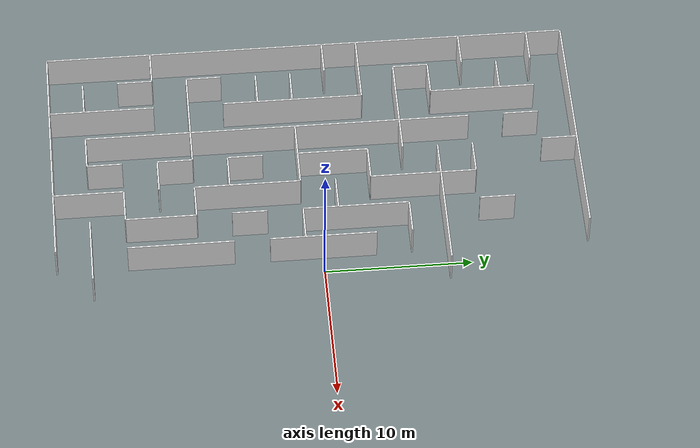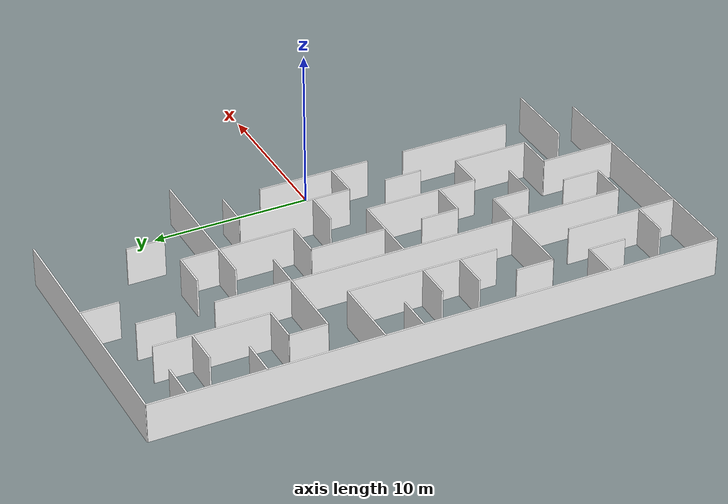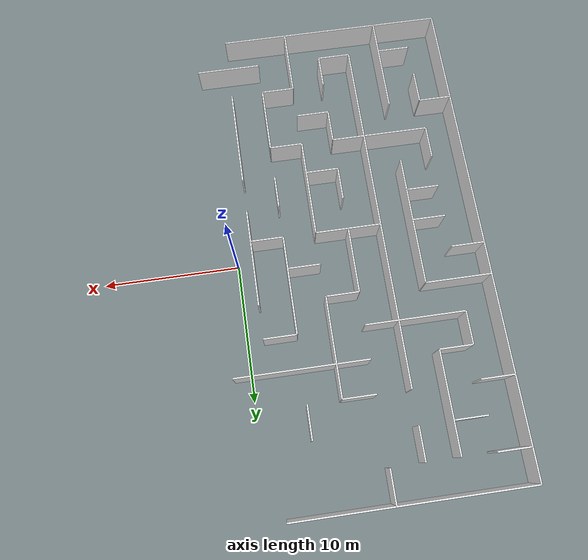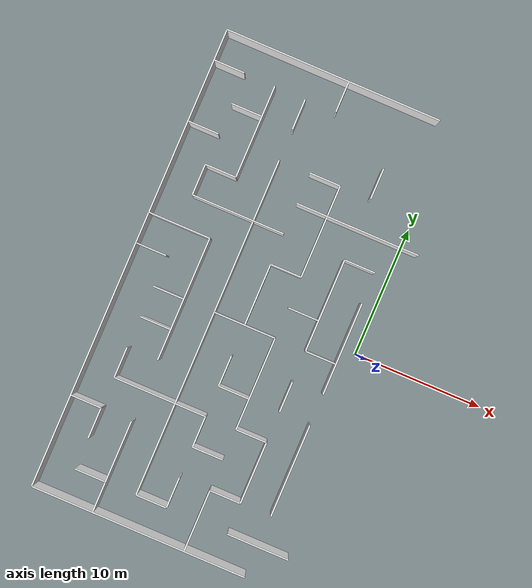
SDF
<sdf version="1.7">
 <model name="maze_3">
  <static>1</static>
  <link name="Wall_0">
   <collision name="Wall_0_Collision">
    <geometry><box><size>16.8000 0.1000 2.5000</size></box></geometry>
    <pose>0 0 1.2500 0 -0 0</pose>
   </collision>
   <visual name="Wall_0_Visual">
    <pose>0 0 1.2500 0 -0 0</pose>
    <geometry><box><size>16.8000 0.1000 2.5000</size></box></geometry>
    <material>
     <script><uri>file://media/materials/scripts/gazebo.material</uri><n>Gazebo/Grey</n></script>
     <ambient>1 1 1 1</ambient>
    </material>
    <meta><layer>0</layer></meta>
   </visual>
   <pose>-9.600000 18.000000 0 0 -0 -0.00000</pose>
  </link>
  <link name="Wall_2">
   <collision name="Wall_2_Collision">
    <geometry><box><size>2.4000 0.1000 2.5000</size></box></geometry>
    <pose>0 0 1.2500 0 -0 0</pose>
   </collision>
   <visual name="Wall_2_Visual">
    <pose>0 0 1.2500 0 -0 0</pose>
    <geometry><box><size>2.4000 0.1000 2.5000</size></box></geometry>
    <material>
     <script><uri>file://media/materials/scripts/gazebo.material</uri><n>Gazebo/Grey</n></script>
     <ambient>1 1 1 1</ambient>
    </material>
    <meta><layer>0</layer></meta>
   </visual>
   <pose>-16.800000 15.600000 0 0 -0 -0.00000</pose>
  </link>
  <link name="Wall_4">
   <collision name="Wall_4_Collision">
    <geometry><box><size>2.4000 0.1000 2.5000</size></box></geometry>
    <pose>0 0 1.2500 0 -0 0</pose>
   </collision>
   <visual name="Wall_4_Visual">
    <pose>0 0 1.2500 0 -0 0</pose>
    <geometry><box><size>2.4000 0.1000 2.5000</size></box></geometry>
    <material>
     <script><uri>file://media/materials/scripts/gazebo.material</uri><n>Gazebo/Grey</n></script>
     <ambient>1 1 1 1</ambient>
    </material>
    <meta><layer>0</layer></meta>
   </visual>
   <pose>-14.400000 13.200000 0 0 -0 -0.00000</pose>
  </link>
  <link name="Wall_6">
   <collision name="Wall_6_Collision">
    <geometry><box><size>2.4000 0.1000 2.5000</size></box></geometry>
    <pose>0 0 1.2500 0 -0 0</pose>
   </collision>
   <visual name="Wall_6_Visual">
    <pose>0 0 1.2500 0 -0 0</pose>
    <geometry><box><size>2.4000 0.1000 2.5000</size></box></geometry>
    <material>
     <script><uri>file://media/materials/scripts/gazebo.material</uri><n>Gazebo/Grey</n></script>
     <ambient>1 1 1 1</ambient>
    </material>
    <meta><layer>0</layer></meta>
   </visual>
   <pose>-16.800000 10.800000 0 0 -0 -0.00000</pose>
  </link>
  <link name="Wall_7">
   <collision name="Wall_7_Collision">
    <geometry><box><size>2.4000 0.1000 2.5000</size></box></geometry>
    <pose>0 0 1.2500 0 -0 0</pose>
   </collision>
   <visual name="Wall_7_Visual">
    <pose>0 0 1.2500 0 -0 0</pose>
    <geometry><box><size>2.4000 0.1000 2.5000</size></box></geometry>
    <material>
     <script><uri>file://media/materials/scripts/gazebo.material</uri><n>Gazebo/Grey</n></script>
     <ambient>1 1 1 1</ambient>
    </material>
    <meta><layer>0</layer></meta>
   </visual>
   <pose>-7.200000 10.800000 0 0 -0 -0.00000</pose>
  </link>
  <link name="Wall_9">
   <collision name="Wall_9_Collision">
    <geometry><box><size>2.4000 0.1000 2.5000</size></box></geometry>
    <pose>0 0 1.2500 0 -0 0</pose>
   </collision>
   <visual name="Wall_9_Visual">
    <pose>0 0 1.2500 0 -0 0</pose>
    <geometry><box><size>2.4000 0.1000 2.5000</size></box></geometry>
    <material>
     <script><uri>file://media/materials/scripts/gazebo.material</uri><n>Gazebo/Grey</n></script>
     <ambient>1 1 1 1</ambient>
    </material>
    <meta><layer>0</layer></meta>
   </visual>
   <pose>-14.400000 8.400000 0 0 -0 -0.00000</pose>
  </link>
  <link name="Wall_10">
   <collision name="Wall_10_Collision">
    <geometry><box><size>9.6000 0.1000 2.5000</size></box></geometry>
    <pose>0 0 1.2500 0 -0 0</pose>
   </collision>
   <visual name="Wall_10_Visual">
    <pose>0 0 1.2500 0 -0 0</pose>
    <geometry><box><size>9.6000 0.1000 2.5000</size></box></geometry>
    <material>
     <script><uri>file://media/materials/scripts/gazebo.material</uri><n>Gazebo/Grey</n></script>
     <ambient>1 1 1 1</ambient>
    </material>
    <meta><layer>0</layer></meta>
   </visual>
   <pose>-3.600000 8.400000 0 0 -0 -0.00000</pose>
  </link>
  <link name="Wall_12">
   <collision name="Wall_12_Collision">
    <geometry><box><size>7.2000 0.1000 2.5000</size></box></geometry>
    <pose>0 0 1.2500 0 -0 0</pose>
   </collision>
   <visual name="Wall_12_Visual">
    <pose>0 0 1.2500 0 -0 0</pose>
    <geometry><box><size>7.2000 0.1000 2.5000</size></box></geometry>
    <material>
     <script><uri>file://media/materials/scripts/gazebo.material</uri><n>Gazebo/Grey</n></script>
     <ambient>1 1 1 1</ambient>
    </material>
    <meta><layer>0</layer></meta>
   </visual>
   <pose>-12.000000 6.000000 0 0 -0 -0.00000</pose>
  </link>
  <link name="Wall_13">
   <collision name="Wall_13_Collision">
    <geometry><box><size>2.4000 0.1000 2.5000</size></box></geometry>
    <pose>0 0 1.2500 0 -0 0</pose>
   </collision>
   <visual name="Wall_13_Visual">
    <pose>0 0 1.2500 0 -0 0</pose>
    <geometry><box><size>2.4000 0.1000 2.5000</size></box></geometry>
    <material>
     <script><uri>file://media/materials/scripts/gazebo.material</uri><n>Gazebo/Grey</n></script>
     <ambient>1 1 1 1</ambient>
    </material>
    <meta><layer>0</layer></meta>
   </visual>
   <pose>-2.400000 6.000000 0 0 -0 -0.00000</pose>
  </link>
  <link name="Wall_16">
   <collision name="Wall_16_Collision">
    <geometry><box><size>4.8000 0.1000 2.5000</size></box></geometry>
    <pose>0 0 1.2500 0 -0 0</pose>
   </collision>
   <visual name="Wall_16_Visual">
    <pose>0 0 1.2500 0 -0 0</pose>
    <geometry><box><size>4.8000 0.1000 2.5000</size></box></geometry>
    <material>
     <script><uri>file://media/materials/scripts/gazebo.material</uri><n>Gazebo/Grey</n></script>
     <ambient>1 1 1 1</ambient>
    </material>
    <meta><layer>0</layer></meta>
   </visual>
   <pose>-15.600000 3.600000 0 0 -0 -0.00000</pose>
  </link>
  <link name="Wall_17">
   <collision name="Wall_17_Collision">
    <geometry><box><size>2.4000 0.1000 2.5000</size></box></geometry>
    <pose>0 0 1.2500 0 -0 0</pose>
   </collision>
   <visual name="Wall_17_Visual">
    <pose>0 0 1.2500 0 -0 0</pose>
    <geometry><box><size>2.4000 0.1000 2.5000</size></box></geometry>
    <material>
     <script><uri>file://media/materials/scripts/gazebo.material</uri><n>Gazebo/Grey</n></script>
     <ambient>1 1 1 1</ambient>
    </material>
    <meta><layer>0</layer></meta>
   </visual>
   <pose>-7.200000 3.600000 0 0 -0 -0.00000</pose>
  </link>
  <link name="Wall_19">
   <collision name="Wall_19_Collision">
    <geometry><box><size>2.4000 0.1000 2.5000</size></box></geometry>
    <pose>0 0 1.2500 0 -0 0</pose>
   </collision>
   <visual name="Wall_19_Visual">
    <pose>0 0 1.2500 0 -0 0</pose>
    <geometry><box><size>2.4000 0.1000 2.5000</size></box></geometry>
    <material>
     <script><uri>file://media/materials/scripts/gazebo.material</uri><n>Gazebo/Grey</n></script>
     <ambient>1 1 1 1</ambient>
    </material>
    <meta><layer>0</layer></meta>
   </visual>
   <pose>-16.800000 1.200000 0 0 -0 -0.00000</pose>
  </link>
  <link name="Wall_20">
   <collision name="Wall_20_Collision">
    <geometry><box><size>2.4000 0.1000 2.5000</size></box></geometry>
    <pose>0 0 1.2500 0 -0 0</pose>
   </collision>
   <visual name="Wall_20_Visual">
    <pose>0 0 1.2500 0 -0 0</pose>
    <geometry><box><size>2.4000 0.1000 2.5000</size></box></geometry>
    <material>
     <script><uri>file://media/materials/scripts/gazebo.material</uri><n>Gazebo/Grey</n></script>
     <ambient>1 1 1 1</ambient>
    </material>
    <meta><layer>0</layer></meta>
   </visual>
   <pose>-4.800000 1.200000 0 0 -0 -0.00000</pose>
  </link>
  <link name="Wall_22">
   <collision name="Wall_22_Collision">
    <geometry><box><size>2.4000 0.1000 2.5000</size></box></geometry>
    <pose>0 0 1.2500 0 -0 0</pose>
   </collision>
   <visual name="Wall_22_Visual">
    <pose>0 0 1.2500 0 -0 0</pose>
    <geometry><box><size>2.4000 0.1000 2.5000</size></box></geometry>
    <material>
     <script><uri>file://media/materials/scripts/gazebo.material</uri><n>Gazebo/Grey</n></script>
     <ambient>1 1 1 1</ambient>
    </material>
    <meta><layer>0</layer></meta>
   </visual>
   <pose>-14.400000 -1.200000 0 0 -0 -0.00000</pose>
  </link>
  <link name="Wall_23">
   <collision name="Wall_23_Collision">
    <geometry><box><size>4.8000 0.1000 2.5000</size></box></geometry>
    <pose>0 0 1.2500 0 -0 0</pose>
   </collision>
   <visual name="Wall_23_Visual">
    <pose>0 0 1.2500 0 -0 0</pose>
    <geometry><box><size>4.8000 0.1000 2.5000</size></box></geometry>
    <material>
     <script><uri>file://media/materials/scripts/gazebo.material</uri><n>Gazebo/Grey</n></script>
     <ambient>1 1 1 1</ambient>
    </material>
    <meta><layer>0</layer></meta>
   </visual>
   <pose>-8.400000 -1.200000 0 0 -0 -0.00000</pose>
  </link>
  <link name="Wall_24">
   <collision name="Wall_24_Collision">
    <geometry><box><size>2.4000 0.1000 2.5000</size></box></geometry>
    <pose>0 0 1.2500 0 -0 0</pose>
   </collision>
   <visual name="Wall_24_Visual">
    <pose>0 0 1.2500 0 -0 0</pose>
    <geometry><box><size>2.4000 0.1000 2.5000</size></box></geometry>
    <material>
     <script><uri>file://media/materials/scripts/gazebo.material</uri><n>Gazebo/Grey</n></script>
     <ambient>1 1 1 1</ambient>
    </material>
    <meta><layer>0</layer></meta>
   </visual>
   <pose>-2.400000 -1.200000 0 0 -0 -0.00000</pose>
  </link>
  <link name="Wall_26">
   <collision name="Wall_26_Collision">
    <geometry><box><size>2.4000 0.1000 2.5000</size></box></geometry>
    <pose>0 0 1.2500 0 -0 0</pose>
   </collision>
   <visual name="Wall_26_Visual">
    <pose>0 0 1.2500 0 -0 0</pose>
    <geometry><box><size>2.4000 0.1000 2.5000</size></box></geometry>
    <material>
     <script><uri>file://media/materials/scripts/gazebo.material</uri><n>Gazebo/Grey</n></script>
     <ambient>1 1 1 1</ambient>
    </material>
    <meta><layer>0</layer></meta>
   </visual>
   <pose>-14.400000 -3.600000 0 0 -0 -0.00000</pose>
  </link>
  <link name="Wall_29">
   <collision name="Wall_29_Collision">
    <geometry><box><size>2.4000 0.1000 2.5000</size></box></geometry>
    <pose>0 0 1.2500 0 -0 0</pose>
   </collision>
   <visual name="Wall_29_Visual">
    <pose>0 0 1.2500 0 -0 0</pose>
    <geometry><box><size>2.4000 0.1000 2.5000</size></box></geometry>
    <material>
     <script><uri>file://media/materials/scripts/gazebo.material</uri><n>Gazebo/Grey</n></script>
     <ambient>1 1 1 1</ambient>
    </material>
    <meta><layer>0</layer></meta>
   </visual>
   <pose>-7.200000 -6.000000 0 0 -0 -0.00000</pose>
  </link>
  <link name="Wall_32">
   <collision name="Wall_32_Collision">
    <geometry><box><size>7.2000 0.1000 2.5000</size></box></geometry>
    <pose>0 0 1.2500 0 -0 0</pose>
   </collision>
   <visual name="Wall_32_Visual">
    <pose>0 0 1.2500 0 -0 0</pose>
    <geometry><box><size>7.2000 0.1000 2.5000</size></box></geometry>
    <material>
     <script><uri>file://media/materials/scripts/gazebo.material</uri><n>Gazebo/Grey</n></script>
     <ambient>1 1 1 1</ambient>
    </material>
    <meta><layer>0</layer></meta>
   </visual>
   <pose>-12.000000 -8.400000 0 0 -0 -0.00000</pose>
  </link>
  <link name="Wall_33">
   <collision name="Wall_33_Collision">
    <geometry><box><size>2.4000 0.1000 2.5000</size></box></geometry>
    <pose>0 0 1.2500 0 -0 0</pose>
   </collision>
   <visual name="Wall_33_Visual">
    <pose>0 0 1.2500 0 -0 0</pose>
    <geometry><box><size>2.4000 0.1000 2.5000</size></box></geometry>
    <material>
     <script><uri>file://media/materials/scripts/gazebo.material</uri><n>Gazebo/Grey</n></script>
     <ambient>1 1 1 1</ambient>
    </material>
    <meta><layer>0</layer></meta>
   </visual>
   <pose>-4.800000 -8.400000 0 0 -0 -0.00000</pose>
  </link>
  <link name="Wall_36">
   <collision name="Wall_36_Collision">
    <geometry><box><size>2.4000 0.1000 2.5000</size></box></geometry>
    <pose>0 0 1.2500 0 -0 0</pose>
   </collision>
   <visual name="Wall_36_Visual">
    <pose>0 0 1.2500 0 -0 0</pose>
    <geometry><box><size>2.4000 0.1000 2.5000</size></box></geometry>
    <material>
     <script><uri>file://media/materials/scripts/gazebo.material</uri><n>Gazebo/Grey</n></script>
     <ambient>1 1 1 1</ambient>
    </material>
    <meta><layer>0</layer></meta>
   </visual>
   <pose>-16.800000 -10.800000 0 0 -0 -0.00000</pose>
  </link>
  <link name="Wall_37">
   <collision name="Wall_37_Collision">
    <geometry><box><size>2.4000 0.1000 2.5000</size></box></geometry>
    <pose>0 0 1.2500 0 -0 0</pose>
   </collision>
   <visual name="Wall_37_Visual">
    <pose>0 0 1.2500 0 -0 0</pose>
    <geometry><box><size>2.4000 0.1000 2.5000</size></box></geometry>
    <material>
     <script><uri>file://media/materials/scripts/gazebo.material</uri><n>Gazebo/Grey</n></script>
     <ambient>1 1 1 1</ambient>
    </material>
    <meta><layer>0</layer></meta>
   </visual>
   <pose>-7.200000 -10.800000 0 0 -0 -0.00000</pose>
  </link>
  <link name="Wall_41">
   <collision name="Wall_41_Collision">
    <geometry><box><size>2.4000 0.1000 2.5000</size></box></geometry>
    <pose>0 0 1.2500 0 -0 0</pose>
   </collision>
   <visual name="Wall_41_Visual">
    <pose>0 0 1.2500 0 -0 0</pose>
    <geometry><box><size>2.4000 0.1000 2.5000</size></box></geometry>
    <material>
     <script><uri>file://media/materials/scripts/gazebo.material</uri><n>Gazebo/Grey</n></script>
     <ambient>1 1 1 1</ambient>
    </material>
    <meta><layer>0</layer></meta>
   </visual>
   <pose>-4.800000 -13.200000 0 0 -0 -0.00000</pose>
  </link>
  <link name="Wall_45">
   <collision name="Wall_45_Collision">
    <geometry><box><size>2.4000 0.1000 2.5000</size></box></geometry>
    <pose>0 0 1.2500 0 -0 0</pose>
   </collision>
   <visual name="Wall_45_Visual">
    <pose>0 0 1.2500 0 -0 0</pose>
    <geometry><box><size>2.4000 0.1000 2.5000</size></box></geometry>
    <material>
     <script><uri>file://media/materials/scripts/gazebo.material</uri><n>Gazebo/Grey</n></script>
     <ambient>1 1 1 1</ambient>
    </material>
    <meta><layer>0</layer></meta>
   </visual>
   <pose>-14.400000 -15.600000 0 0 -0 -0.00000</pose>
  </link>
  <link name="Wall_46">
   <collision name="Wall_46_Collision">
    <geometry><box><size>2.4000 0.1000 2.5000</size></box></geometry>
    <pose>0 0 1.2500 0 -0 0</pose>
   </collision>
   <visual name="Wall_46_Visual">
    <pose>0 0 1.2500 0 -0 0</pose>
    <geometry><box><size>2.4000 0.1000 2.5000</size></box></geometry>
    <material>
     <script><uri>file://media/materials/scripts/gazebo.material</uri><n>Gazebo/Grey</n></script>
     <ambient>1 1 1 1</ambient>
    </material>
    <meta><layer>0</layer></meta>
   </visual>
   <pose>-9.600000 -15.600000 0 0 -0 -0.00000</pose>
  </link>
  <link name="Wall_47">
   <collision name="Wall_47_Collision">
    <geometry><box><size>4.8000 0.1000 2.5000</size></box></geometry>
    <pose>0 0 1.2500 0 -0 0</pose>
   </collision>
   <visual name="Wall_47_Visual">
    <pose>0 0 1.2500 0 -0 0</pose>
    <geometry><box><size>4.8000 0.1000 2.5000</size></box></geometry>
    <material>
     <script><uri>file://media/materials/scripts/gazebo.material</uri><n>Gazebo/Grey</n></script>
     <ambient>1 1 1 1</ambient>
    </material>
    <meta><layer>0</layer></meta>
   </visual>
   <pose>-1.200000 -15.600000 0 0 -0 -0.00000</pose>
  </link>
  <link name="Wall_49">
   <collision name="Wall_49_Collision">
    <geometry><box><size>16.8000 0.1000 2.5000</size></box></geometry>
    <pose>0 0 1.2500 0 -0 0</pose>
   </collision>
   <visual name="Wall_49_Visual">
    <pose>0 0 1.2500 0 -0 0</pose>
    <geometry><box><size>16.8000 0.1000 2.5000</size></box></geometry>
    <material>
     <script><uri>file://media/materials/scripts/gazebo.material</uri><n>Gazebo/Grey</n></script>
     <ambient>1 1 1 1</ambient>
    </material>
    <meta><layer>0</layer></meta>
   </visual>
   <pose>-9.600000 -18.000000 0 0 -0 -0.00000</pose>
  </link>
  <link name="Wall_51">
   <collision name="Wall_51_Collision">
    <geometry><box><size>36.0000 0.1000 2.5000</size></box></geometry>
    <pose>0 0 1.2500 0 -0 0</pose>
   </collision>
   <visual name="Wall_51_Visual">
    <pose>0 0 1.2500 0 -0 0</pose>
    <geometry><box><size>36.0000 0.1000 2.5000</size></box></geometry>
    <material>
     <script><uri>file://media/materials/scripts/gazebo.material</uri><n>Gazebo/Grey</n></script>
     <ambient>1 1 1 1</ambient>
    </material>
    <meta><layer>0</layer></meta>
   </visual>
   <pose>-18.000000 -0.000000 0 0 -0 -1.57080</pose>
  </link>
  <link name="Wall_52">
   <collision name="Wall_52_Collision">
    <geometry><box><size>2.4000 0.1000 2.5000</size></box></geometry>
    <pose>0 0 1.2500 0 -0 0</pose>
   </collision>
   <visual name="Wall_52_Visual">
    <pose>0 0 1.2500 0 -0 0</pose>
    <geometry><box><size>2.4000 0.1000 2.5000</size></box></geometry>
    <material>
     <script><uri>file://media/materials/scripts/gazebo.material</uri><n>Gazebo/Grey</n></script>
     <ambient>1 1 1 1</ambient>
    </material>
    <meta><layer>0</layer></meta>
   </visual>
   <pose>-15.600000 7.200000 0 0 -0 -1.57080</pose>
  </link>
  <link name="Wall_53">
   <collision name="Wall_53_Collision">
    <geometry><box><size>2.4000 0.1000 2.5000</size></box></geometry>
    <pose>0 0 1.2500 0 -0 0</pose>
   </collision>
   <visual name="Wall_53_Visual">
    <pose>0 0 1.2500 0 -0 0</pose>
    <geometry><box><size>2.4000 0.1000 2.5000</size></box></geometry>
    <material>
     <script><uri>file://media/materials/scripts/gazebo.material</uri><n>Gazebo/Grey</n></script>
     <ambient>1 1 1 1</ambient>
    </material>
    <meta><layer>0</layer></meta>
   </visual>
   <pose>-15.600000 -7.200000 0 0 -0 -1.57080</pose>
  </link>
  <link name="Wall_54">
   <collision name="Wall_54_Collision">
    <geometry><box><size>2.4000 0.1000 2.5000</size></box></geometry>
    <pose>0 0 1.2500 0 -0 0</pose>
   </collision>
   <visual name="Wall_54_Visual">
    <pose>0 0 1.2500 0 -0 0</pose>
    <geometry><box><size>2.4000 0.1000 2.5000</size></box></geometry>
    <material>
     <script><uri>file://media/materials/scripts/gazebo.material</uri><n>Gazebo/Grey</n></script>
     <ambient>1 1 1 1</ambient>
    </material>
    <meta><layer>0</layer></meta>
   </visual>
   <pose>-15.600000 -12.000000 0 0 -0 -1.57080</pose>
  </link>
  <link name="Wall_55">
   <collision name="Wall_55_Collision">
    <geometry><box><size>7.2000 0.1000 2.5000</size></box></geometry>
    <pose>0 0 1.2500 0 -0 0</pose>
   </collision>
   <visual name="Wall_55_Visual">
    <pose>0 0 1.2500 0 -0 0</pose>
    <geometry><box><size>7.2000 0.1000 2.5000</size></box></geometry>
    <material>
     <script><uri>file://media/materials/scripts/gazebo.material</uri><n>Gazebo/Grey</n></script>
     <ambient>1 1 1 1</ambient>
    </material>
    <meta><layer>0</layer></meta>
   </visual>
   <pose>-13.200000 12.000000 0 0 -0 -1.57080</pose>
  </link>
  <link name="Wall_56">
   <collision name="Wall_56_Collision">
    <geometry><box><size>9.6000 0.1000 2.5000</size></box></geometry>
    <pose>0 0 1.2500 0 -0 0</pose>
   </collision>
   <visual name="Wall_56_Visual">
    <pose>0 0 1.2500 0 -0 0</pose>
    <geometry><box><size>9.6000 0.1000 2.5000</size></box></geometry>
    <material>
     <script><uri>file://media/materials/scripts/gazebo.material</uri><n>Gazebo/Grey</n></script>
     <ambient>1 1 1 1</ambient>
    </material>
    <meta><layer>0</layer></meta>
   </visual>
   <pose>-13.200000 -1.200000 0 0 -0 -1.57080</pose>
  </link>
  <link name="Wall_57">
   <collision name="Wall_57_Collision">
    <geometry><box><size>7.2000 0.1000 2.5000</size></box></geometry>
    <pose>0 0 1.2500 0 -0 0</pose>
   </collision>
   <visual name="Wall_57_Visual">
    <pose>0 0 1.2500 0 -0 0</pose>
    <geometry><box><size>7.2000 0.1000 2.5000</size></box></geometry>
    <material>
     <script><uri>file://media/materials/scripts/gazebo.material</uri><n>Gazebo/Grey</n></script>
     <ambient>1 1 1 1</ambient>
    </material>
    <meta><layer>0</layer></meta>
   </visual>
   <pose>-13.200000 -14.400000 0 0 -0 -1.57080</pose>
  </link>
  <link name="Wall_58">
   <collision name="Wall_58_Collision">
    <geometry><box><size>2.4000 0.1000 2.5000</size></box></geometry>
    <pose>0 0 1.2500 0 -0 0</pose>
   </collision>
   <visual name="Wall_58_Visual">
    <pose>0 0 1.2500 0 -0 0</pose>
    <geometry><box><size>2.4000 0.1000 2.5000</size></box></geometry>
    <material>
     <script><uri>file://media/materials/scripts/gazebo.material</uri><n>Gazebo/Grey</n></script>
     <ambient>1 1 1 1</ambient>
    </material>
    <meta><layer>0</layer></meta>
   </visual>
   <pose>-10.800000 14.400000 0 0 -0 -1.57080</pose>
  </link>
  <link name="Wall_59">
   <collision name="Wall_59_Collision">
    <geometry><box><size>26.4000 0.1000 2.5000</size></box></geometry>
    <pose>0 0 1.2500 0 -0 0</pose>
   </collision>
   <visual name="Wall_59_Visual">
    <pose>0 0 1.2500 0 -0 0</pose>
    <geometry><box><size>26.4000 0.1000 2.5000</size></box></geometry>
    <material>
     <script><uri>file://media/materials/scripts/gazebo.material</uri><n>Gazebo/Grey</n></script>
     <ambient>1 1 1 1</ambient>
    </material>
    <meta><layer>0</layer></meta>
   </visual>
   <pose>-10.800000 -2.400000 0 0 -0 -1.57080</pose>
  </link>
  <link name="Wall_60">
   <collision name="Wall_60_Collision">
    <geometry><box><size>2.4000 0.1000 2.5000</size></box></geometry>
    <pose>0 0 1.2500 0 -0 0</pose>
   </collision>
   <visual name="Wall_60_Visual">
    <pose>0 0 1.2500 0 -0 0</pose>
    <geometry><box><size>2.4000 0.1000 2.5000</size></box></geometry>
    <material>
     <script><uri>file://media/materials/scripts/gazebo.material</uri><n>Gazebo/Grey</n></script>
     <ambient>1 1 1 1</ambient>
    </material>
    <meta><layer>0</layer></meta>
   </visual>
   <pose>-8.400000 16.800000 0 0 -0 -1.57080</pose>
  </link>
  <link name="Wall_61">
   <collision name="Wall_61_Collision">
    <geometry><box><size>4.8000 0.1000 2.5000</size></box></geometry>
    <pose>0 0 1.2500 0 -0 0</pose>
   </collision>
   <visual name="Wall_61_Visual">
    <pose>0 0 1.2500 0 -0 0</pose>
    <geometry><box><size>4.8000 0.1000 2.5000</size></box></geometry>
    <material>
     <script><uri>file://media/materials/scripts/gazebo.material</uri><n>Gazebo/Grey</n></script>
     <ambient>1 1 1 1</ambient>
    </material>
    <meta><layer>0</layer></meta>
   </visual>
   <pose>-8.400000 1.200000 0 0 -0 -1.57080</pose>
  </link>
  <link name="Wall_62">
   <collision name="Wall_62_Collision">
    <geometry><box><size>2.4000 0.1000 2.5000</size></box></geometry>
    <pose>0 0 1.2500 0 -0 0</pose>
   </collision>
   <visual name="Wall_62_Visual">
    <pose>0 0 1.2500 0 -0 0</pose>
    <geometry><box><size>2.4000 0.1000 2.5000</size></box></geometry>
    <material>
     <script><uri>file://media/materials/scripts/gazebo.material</uri><n>Gazebo/Grey</n></script>
     <ambient>1 1 1 1</ambient>
    </material>
    <meta><layer>0</layer></meta>
   </visual>
   <pose>-8.400000 -4.800000 0 0 -0 -1.57080</pose>
  </link>
  <link name="Wall_63">
   <collision name="Wall_63_Collision">
    <geometry><box><size>2.4000 0.1000 2.5000</size></box></geometry>
    <pose>0 0 1.2500 0 -0 0</pose>
   </collision>
   <visual name="Wall_63_Visual">
    <pose>0 0 1.2500 0 -0 0</pose>
    <geometry><box><size>2.4000 0.1000 2.5000</size></box></geometry>
    <material>
     <script><uri>file://media/materials/scripts/gazebo.material</uri><n>Gazebo/Grey</n></script>
     <ambient>1 1 1 1</ambient>
    </material>
    <meta><layer>0</layer></meta>
   </visual>
   <pose>-8.400000 -9.600000 0 0 -0 -1.57080</pose>
  </link>
  <link name="Wall_64">
   <collision name="Wall_64_Collision">
    <geometry><box><size>2.4000 0.1000 2.5000</size></box></geometry>
    <pose>0 0 1.2500 0 -0 0</pose>
   </collision>
   <visual name="Wall_64_Visual">
    <pose>0 0 1.2500 0 -0 0</pose>
    <geometry><box><size>2.4000 0.1000 2.5000</size></box></geometry>
    <material>
     <script><uri>file://media/materials/scripts/gazebo.material</uri><n>Gazebo/Grey</n></script>
     <ambient>1 1 1 1</ambient>
    </material>
    <meta><layer>0</layer></meta>
   </visual>
   <pose>-8.400000 -14.400000 0 0 -0 -1.57080</pose>
  </link>
  <link name="Wall_65">
   <collision name="Wall_65_Collision">
    <geometry><box><size>7.2000 0.1000 2.5000</size></box></geometry>
    <pose>0 0 1.2500 0 -0 0</pose>
   </collision>
   <visual name="Wall_65_Visual">
    <pose>0 0 1.2500 0 -0 0</pose>
    <geometry><box><size>7.2000 0.1000 2.5000</size></box></geometry>
    <material>
     <script><uri>file://media/materials/scripts/gazebo.material</uri><n>Gazebo/Grey</n></script>
     <ambient>1 1 1 1</ambient>
    </material>
    <meta><layer>0</layer></meta>
   </visual>
   <pose>-6.000000 7.200000 0 0 -0 -1.57080</pose>
  </link>
  <link name="Wall_66">
   <collision name="Wall_66_Collision">
    <geometry><box><size>7.2000 0.1000 2.5000</size></box></geometry>
    <pose>0 0 1.2500 0 -0 0</pose>
   </collision>
   <visual name="Wall_66_Visual">
    <pose>0 0 1.2500 0 -0 0</pose>
    <geometry><box><size>7.2000 0.1000 2.5000</size></box></geometry>
    <material>
     <script><uri>file://media/materials/scripts/gazebo.material</uri><n>Gazebo/Grey</n></script>
     <ambient>1 1 1 1</ambient>
    </material>
    <meta><layer>0</layer></meta>
   </visual>
   <pose>-6.000000 -4.800000 0 0 -0 -1.57080</pose>
  </link>
  <link name="Wall_67">
   <collision name="Wall_67_Collision">
    <geometry><box><size>4.8000 0.1000 2.5000</size></box></geometry>
    <pose>0 0 1.2500 0 -0 0</pose>
   </collision>
   <visual name="Wall_67_Visual">
    <pose>0 0 1.2500 0 -0 0</pose>
    <geometry><box><size>4.8000 0.1000 2.5000</size></box></geometry>
    <material>
     <script><uri>file://media/materials/scripts/gazebo.material</uri><n>Gazebo/Grey</n></script>
     <ambient>1 1 1 1</ambient>
    </material>
    <meta><layer>0</layer></meta>
   </visual>
   <pose>-6.000000 -15.600000 0 0 -0 -1.57080</pose>
  </link>
  <link name="Wall_68">
   <collision name="Wall_68_Collision">
    <geometry><box><size>2.4000 0.1000 2.5000</size></box></geometry>
    <pose>0 0 1.2500 0 -0 0</pose>
   </collision>
   <visual name="Wall_68_Visual">
    <pose>0 0 1.2500 0 -0 0</pose>
    <geometry><box><size>2.4000 0.1000 2.5000</size></box></geometry>
    <material>
     <script><uri>file://media/materials/scripts/gazebo.material</uri><n>Gazebo/Grey</n></script>
     <ambient>1 1 1 1</ambient>
    </material>
    <meta><layer>0</layer></meta>
   </visual>
   <pose>-3.600000 12.000000 0 0 -0 -1.57080</pose>
  </link>
  <link name="Wall_69">
   <collision name="Wall_69_Collision">
    <geometry><box><size>7.2000 0.1000 2.5000</size></box></geometry>
    <pose>0 0 1.2500 0 -0 0</pose>
   </collision>
   <visual name="Wall_69_Visual">
    <pose>0 0 1.2500 0 -0 0</pose>
    <geometry><box><size>7.2000 0.1000 2.5000</size></box></geometry>
    <material>
     <script><uri>file://media/materials/scripts/gazebo.material</uri><n>Gazebo/Grey</n></script>
     <ambient>1 1 1 1</ambient>
    </material>
    <meta><layer>0</layer></meta>
   </visual>
   <pose>-3.600000 2.400000 0 0 -0 -1.57080</pose>
  </link>
  <link name="Wall_70">
   <collision name="Wall_70_Collision">
    <geometry><box><size>2.4000 0.1000 2.5000</size></box></geometry>
    <pose>0 0 1.2500 0 -0 0</pose>
   </collision>
   <visual name="Wall_70_Visual">
    <pose>0 0 1.2500 0 -0 0</pose>
    <geometry><box><size>2.4000 0.1000 2.5000</size></box></geometry>
    <material>
     <script><uri>file://media/materials/scripts/gazebo.material</uri><n>Gazebo/Grey</n></script>
     <ambient>1 1 1 1</ambient>
    </material>
    <meta><layer>0</layer></meta>
   </visual>
   <pose>-3.600000 -4.800000 0 0 -0 -1.57080</pose>
  </link>
  <link name="Wall_71">
   <collision name="Wall_71_Collision">
    <geometry><box><size>4.8000 0.1000 2.5000</size></box></geometry>
    <pose>0 0 1.2500 0 -0 0</pose>
   </collision>
   <visual name="Wall_71_Visual">
    <pose>0 0 1.2500 0 -0 0</pose>
    <geometry><box><size>4.8000 0.1000 2.5000</size></box></geometry>
    <material>
     <script><uri>file://media/materials/scripts/gazebo.material</uri><n>Gazebo/Grey</n></script>
     <ambient>1 1 1 1</ambient>
    </material>
    <meta><layer>0</layer></meta>
   </visual>
   <pose>-3.600000 -10.800000 0 0 -0 -1.57080</pose>
  </link>
  <link name="Wall_72">
   <collision name="Wall_72_Collision">
    <geometry><box><size>7.2000 0.1000 2.5000</size></box></geometry>
    <pose>0 0 1.2500 0 -0 0</pose>
   </collision>
   <visual name="Wall_72_Visual">
    <pose>0 0 1.2500 0 -0 0</pose>
    <geometry><box><size>7.2000 0.1000 2.5000</size></box></geometry>
    <material>
     <script><uri>file://media/materials/scripts/gazebo.material</uri><n>Gazebo/Grey</n></script>
     <ambient>1 1 1 1</ambient>
    </material>
    <meta><layer>0</layer></meta>
   </visual>
   <pose>-1.200000 -0.000000 0 0 -0 -1.57080</pose>
  </link>
  <link name="Wall_73">
   <collision name="Wall_73_Collision">
    <geometry><box><size>7.2000 0.1000 2.5000</size></box></geometry>
    <pose>0 0 1.2500 0 -0 0</pose>
   </collision>
   <visual name="Wall_73_Visual">
    <pose>0 0 1.2500 0 -0 0</pose>
    <geometry><box><size>7.2000 0.1000 2.5000</size></box></geometry>
    <material>
     <script><uri>file://media/materials/scripts/gazebo.material</uri><n>Gazebo/Grey</n></script>
     <ambient>1 1 1 1</ambient>
    </material>
    <meta><layer>0</layer></meta>
   </visual>
   <pose>-1.200000 -9.600000 0 0 -0 -1.57080</pose>
  </link>
 </model>
</sdf>
